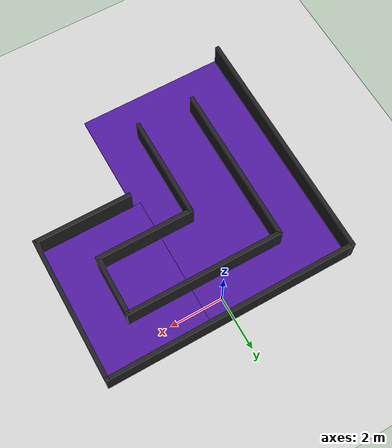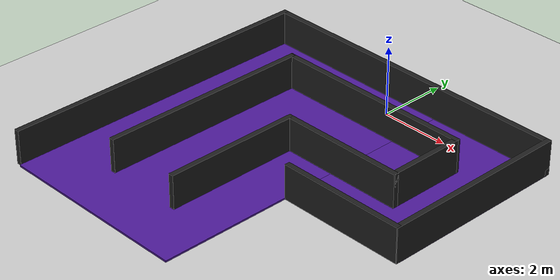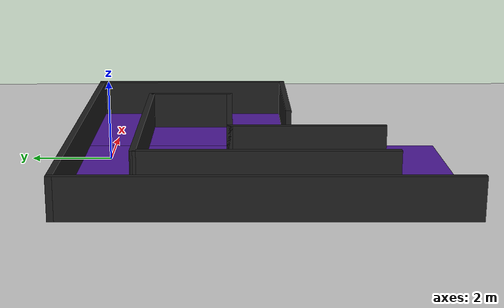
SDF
<sdf version="1.4">
 <world name="default">
  <light type="directional" name="sun">
   <cast_shadows>false</cast_shadows>
   <pose>-6 2 5 -0.5 -0.5 0</pose>
   <diffuse>0.8 0.8 0.8 1</diffuse>
   <specular>0.9 0.9 0.9 1</specular>
   <attenuation>
    <range>1000</range>
    <constant>0.9</constant>
    <linear>0.01</linear>
    <quadratic>0.001</quadratic>
   </attenuation>
   <direction>0 0 -1</direction>
  </light>
  <light type="directional" name="sun2">
   <cast_shadows>false</cast_shadows>
   <pose>-3 -7 5 0.5 0.5 0</pose>
   <diffuse>0.8 0.8 0.8 1</diffuse>
   <specular>0.9 0.9 0.9 1</specular>
   <attenuation>
    <range>1000</range>
    <constant>0.9</constant>
    <linear>0.01</linear>
    <quadratic>0.001</quadratic>
   </attenuation>
   <direction>0 0 -1</direction>
  </light>
  <model name="ground_plane">
   <static>1</static>
   <link name="link">
    <collision name="collision">
     <geometry><plane><normal>0 0 1</normal><size>100 100</size></plane></geometry>
     <surface><friction><ode><mu>100</mu><mu2>50</mu2></ode></friction></surface>
    </collision>
    <visual name="visual">
     <cast_shadows>0</cast_shadows>
     <geometry><plane><normal>0 0 1</normal><size>100 100</size></plane></geometry>
     <material>
      <script><uri>file://media/materials/scripts/gazebo.material</uri><name>Gazebo/Grey</name></script>
     </material>
    </visual>
    <velocity_decay><linear>0</linear><angular>0</angular></velocity_decay>
   </link>
  </model>
  <scene><ambient>0.4 0.4 0.4 1</ambient><background>0.7 0.7 0.7 1</background><shadows>0</shadows></scene>
  <physics type="ode">
   <max_step_size>0.01</max_step_size>
   <real_time_factor>1</real_time_factor>
   <real_time_update_rate>0</real_time_update_rate>
   <gravity>0 0 -9.8</gravity>
  </physics>
  <include><uri>model://Circuit_ql_2c</uri><pose>0 -3.85 0 0 0 1.567</pose></include>
 </world>
</sdf>

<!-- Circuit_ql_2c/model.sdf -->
<sdf version='1.6'>
  <model name='Circuit_ql_2c'>
    <link name='link_0'>
      <pose frame=''>-0.02607 1.78312 0 0 -0 0</pose>
      <inertial>
        <mass>2.28469</mass>
        <inertia>
          <ixx>6.04283</ixx>
          <ixy>0</ixy>
          <ixz>0</ixz>
          <iyy>16.0094</iyy>
          <iyz>0</iyz>
          <izz>22.0522</izz>
        </inertia>
        <pose frame=''>0 0 0.01 0 -0 0</pose>
      </inertial>
      <self_collide>0</self_collide>
      <kinematic>0</kinematic>
      <gravity>1</gravity>
      <visual name='visual'>
        <pose frame=''>0 0 0.01 0 -0 0</pose>
        <geometry>
          <box>
            <size>9.16985 5.63372 0.05</size>
          </box>
        </geometry>
        <material>
          <lighting>1</lighting>
          <script>
            <uri>file://media/materials/scripts/gazebo.material</uri>
            <name>Gazebo/Indigo</name>
          </script>
          <emissive>0 0 0 1</emissive>
          <shader type='vertex'>
            <normal_map>__default__</normal_map>
          </shader>
        </material>
        <cast_shadows>0</cast_shadows>
        <transparency>0</transparency>
      </visual>
      <collision name='collision'>
        <laser_retro>0</laser_retro>
        <max_contacts>10</max_contacts>
        <pose frame=''>0 0 0.01 0 -0 0</pose>
        <geometry>
          <box>
            <size>9.16985 5.63372 0.05</size>
          </box>
        </geometry>
        <surface>
          <friction>
            <ode>
              <mu>1</mu>
              <mu2>1</mu2>
              <fdir1>0 0 0</fdir1>
              <slip1>0</slip1>
              <slip2>0</slip2>
            </ode>
            <torsional>
              <coefficient>1</coefficient>
              <patch_radius>0</patch_radius>
              <surface_radius>0</surface_radius>
              <use_patch_radius>1</use_patch_radius>
              <ode>
                <slip>0</slip>
              </ode>
            </torsional>
          </friction>
          <bounce>
            <restitution_coefficient>0</restitution_coefficient>
            <threshold>1e+06</threshold>
          </bounce>
          <contact>
            <collide_without_contact>0</collide_without_contact>
            <collide_without_contact_bitmask>1</collide_without_contact_bitmask>
            <collide_bitmask>1</collide_bitmask>
            <ode>
              <soft_cfm>0</soft_cfm>
              <soft_erp>0.2</soft_erp>
              <kp>1e+13</kp>
              <kd>1</kd>
              <max_vel>0.01</max_vel>
              <min_depth>0</min_depth>
            </ode>
            <bullet>
              <split_impulse>1</split_impulse>
              <split_impulse_penetration_threshold>-0.01</split_impulse_penetration_threshold>
              <soft_cfm>0</soft_cfm>
              <soft_erp>0.2</soft_erp>
              <kp>1e+13</kp>
              <kd>1</kd>
            </bullet>
          </contact>
        </surface>
      </collision>
    </link>
    <link name='Wall_12'>
      <pose frame=''>-1.111 0.509 0 0 -0 0</pose>
      <self_collide>0</self_collide>
      <kinematic>0</kinematic>
      <visual name='Wall_12_Visual'>
        <pose frame=''>0 0 0.5 0 -0 0</pose>
        <geometry>
          <box>
            <size>4 0.15 1</size>
          </box>
        </geometry>
        <material>
          <script>
            <uri>file://media/materials/scripts/gazebo.material</uri>
            <name>Gazebo/Black</name>
          </script>
          <emissive>0 0 0 1</emissive>
        </material>
        <cast_shadows>0</cast_shadows>
        <transparency>0</transparency>
      </visual>
      <collision name='Wall_12_Collision'>
        <laser_retro>0</laser_retro>
        <max_contacts>10</max_contacts>
        <pose frame=''>0 0 0.5 0 -0 0</pose>
        <geometry>
          <box>
            <size>4 0.15 1</size>
          </box>
        </geometry>
        <surface>
          <friction>
            <ode>
              <mu>1</mu>
              <mu2>1</mu2>
              <fdir1>0 0 0</fdir1>
              <slip1>0</slip1>
              <slip2>0</slip2>
            </ode>
            <torsional>
              <coefficient>1</coefficient>
              <patch_radius>0</patch_radius>
              <surface_radius>0</surface_radius>
              <use_patch_radius>1</use_patch_radius>
              <ode>
                <slip>0</slip>
              </ode>
            </torsional>
          </friction>
          <bounce>
            <restitution_coefficient>0</restitution_coefficient>
            <threshold>1e+06</threshold>
          </bounce>
          <contact>
            <collide_without_contact>0</collide_without_contact>
            <collide_without_contact_bitmask>1</collide_without_contact_bitmask>
            <collide_bitmask>1</collide_bitmask>
            <ode>
              <soft_cfm>0</soft_cfm>
              <soft_erp>0.2</soft_erp>
              <kp>1e+13</kp>
              <kd>1</kd>
              <max_vel>0.01</max_vel>
              <min_depth>0</min_depth>
            </ode>
            <bullet>
              <split_impulse>1</split_impulse>
              <split_impulse_penetration_threshold>-0.01</split_impulse_penetration_threshold>
              <soft_cfm>0</soft_cfm>
              <soft_erp>0.2</soft_erp>
              <kp>1e+13</kp>
              <kd>1</kd>
            </bullet>
          </contact>
        </surface>
      </collision>
    </link>
    <link name='Wall_13'>
      <pose frame=''>0.814 -1.291 0 0 0 -1.5708</pose>
      <self_collide>0</self_collide>
      <kinematic>0</kinematic>
      <visual name='Wall_13_Visual'>
        <pose frame=''>0 0 0.5 0 -0 0</pose>
        <geometry>
          <box>
            <size>3.75 0.15 1</size>
          </box>
        </geometry>
        <material>
          <script>
            <uri>file://media/materials/scripts/gazebo.material</uri>
            <name>Gazebo/Black</name>
          </script>
          <emissive>0 0 0 1</emissive>
        </material>
        <cast_shadows>0</cast_shadows>
        <transparency>0</transparency>
      </visual>
      <collision name='Wall_13_Collision'>
        <laser_retro>0</laser_retro>
        <max_contacts>10</max_contacts>
        <pose frame=''>0 0 0.5 0 -0 0</pose>
        <geometry>
          <box>
            <size>3.75 0.15 1</size>
          </box>
        </geometry>
        <surface>
          <friction>
            <ode>
              <mu>1</mu>
              <mu2>1</mu2>
              <fdir1>0 0 0</fdir1>
              <slip1>0</slip1>
              <slip2>0</slip2>
            </ode>
            <torsional>
              <coefficient>1</coefficient>
              <patch_radius>0</patch_radius>
              <surface_radius>0</surface_radius>
              <use_patch_radius>1</use_patch_radius>
              <ode>
                <slip>0</slip>
              </ode>
            </torsional>
          </friction>
          <bounce>
            <restitution_coefficient>0</restitution_coefficient>
            <threshold>1e+06</threshold>
          </bounce>
          <contact>
            <collide_without_contact>0</collide_without_contact>
            <collide_without_contact_bitmask>1</collide_without_contact_bitmask>
            <collide_bitmask>1</collide_bitmask>
            <ode>
              <soft_cfm>0</soft_cfm>
              <soft_erp>0.2</soft_erp>
              <kp>1e+13</kp>
              <kd>1</kd>
              <max_vel>0.01</max_vel>
              <min_depth>0</min_depth>
            </ode>
            <bullet>
              <split_impulse>1</split_impulse>
              <split_impulse_penetration_threshold>-0.01</split_impulse_penetration_threshold>
              <soft_cfm>0</soft_cfm>
              <soft_erp>0.2</soft_erp>
              <kp>1e+13</kp>
              <kd>1</kd>
            </bullet>
          </contact>
        </surface>
      </collision>
    </link>
    <link name='Wall_14'>
      <pose frame=''>1.9 -3.091 0 0 -0 0</pose>
      <self_collide>0</self_collide>
      <kinematic>0</kinematic>
      <visual name='Wall_14_Visual'>
        <pose frame=''>0 0 0.5 0 -0 0</pose>
        <geometry>
          <box>
            <size>2.25 0.15 1</size>
          </box>
        </geometry>
        <material>
          <script>
            <uri>file://media/materials/scripts/gazebo.material</uri>
            <name>Gazebo/Black</name>
          </script>
          <emissive>0 0 0 1</emissive>
        </material>
        <cast_shadows>0</cast_shadows>
        <transparency>0</transparency>
      </visual>
      <collision name='Wall_14_Collision'>
        <laser_retro>0</laser_retro>
        <max_contacts>10</max_contacts>
        <pose frame=''>0 0 0.5 0 -0 0</pose>
        <geometry>
          <box>
            <size>2.25 0.15 1</size>
          </box>
        </geometry>
        <surface>
          <friction>
            <ode>
              <mu>1</mu>
              <mu2>1</mu2>
              <fdir1>0 0 0</fdir1>
              <slip1>0</slip1>
              <slip2>0</slip2>
            </ode>
            <torsional>
              <coefficient>1</coefficient>
              <patch_radius>0</patch_radius>
              <surface_radius>0</surface_radius>
              <use_patch_radius>1</use_patch_radius>
              <ode>
                <slip>0</slip>
              </ode>
            </torsional>
          </friction>
          <bounce>
            <restitution_coefficient>0</restitution_coefficient>
            <threshold>1e+06</threshold>
          </bounce>
          <contact>
            <collide_without_contact>0</collide_without_contact>
            <collide_without_contact_bitmask>1</collide_without_contact_bitmask>
            <collide_bitmask>1</collide_bitmask>
            <ode>
              <soft_cfm>0</soft_cfm>
              <soft_erp>0.2</soft_erp>
              <kp>1e+13</kp>
              <kd>1</kd>
              <max_vel>0.01</max_vel>
              <min_depth>0</min_depth>
            </ode>
            <bullet>
              <split_impulse>1</split_impulse>
              <split_impulse_penetration_threshold>-0.01</split_impulse_penetration_threshold>
              <soft_cfm>0</soft_cfm>
              <soft_erp>0.2</soft_erp>
              <kp>1e+13</kp>
              <kd>1</kd>
            </bullet>
          </contact>
        </surface>
      </collision>
    </link>
    <link name='Wall_15'>
      <pose frame=''>3.0215 -0.1735 0 0 -0 1.56823</pose>
      <self_collide>0</self_collide>
      <kinematic>0</kinematic>
      <visual name='Wall_15_Visual'>
        <pose frame=''>0 0 0.5 0 -0 0</pose>
        <geometry>
          <box>
            <size>5.98502 0.15 1</size>
          </box>
        </geometry>
        <material>
          <script>
            <uri>file://media/materials/scripts/gazebo.material</uri>
            <name>Gazebo/Black</name>
          </script>
          <emissive>0 0 0 1</emissive>
        </material>
        <cast_shadows>0</cast_shadows>
        <transparency>0</transparency>
      </visual>
      <collision name='Wall_15_Collision'>
        <laser_retro>0</laser_retro>
        <max_contacts>10</max_contacts>
        <pose frame=''>0 0 0.5 0 -0 0</pose>
        <geometry>
          <box>
            <size>5.98502 0.15 1</size>
          </box>
        </geometry>
        <surface>
          <friction>
            <ode>
              <mu>1</mu>
              <mu2>1</mu2>
              <fdir1>0 0 0</fdir1>
              <slip1>0</slip1>
              <slip2>0</slip2>
            </ode>
            <torsional>
              <coefficient>1</coefficient>
              <patch_radius>0</patch_radius>
              <surface_radius>0</surface_radius>
              <use_patch_radius>1</use_patch_radius>
              <ode>
                <slip>0</slip>
              </ode>
            </torsional>
          </friction>
          <bounce>
            <restitution_coefficient>0</restitution_coefficient>
            <threshold>1e+06</threshold>
          </bounce>
          <contact>
            <collide_without_contact>0</collide_without_contact>
            <collide_without_contact_bitmask>1</collide_without_contact_bitmask>
            <collide_bitmask>1</collide_bitmask>
            <ode>
              <soft_cfm>0</soft_cfm>
              <soft_erp>0.2</soft_erp>
              <kp>1e+13</kp>
              <kd>1</kd>
              <max_vel>0.01</max_vel>
              <min_depth>0</min_depth>
            </ode>
            <bullet>
              <split_impulse>1</split_impulse>
              <split_impulse_penetration_threshold>-0.01</split_impulse_penetration_threshold>
              <soft_cfm>0</soft_cfm>
              <soft_erp>0.2</soft_erp>
              <kp>1e+13</kp>
              <kd>1</kd>
            </bullet>
          </contact>
        </surface>
      </collision>
    </link>
    <link name='Wall_16'>
      <pose frame=''>-0.02 2.744 0 0 -0 3.14159</pose>
      <self_collide>0</self_collide>
      <kinematic>0</kinematic>
      <visual name='Wall_16_Visual'>
        <pose frame=''>0 0 0.5 0 -0 0</pose>
        <geometry>
          <box>
            <size>6.2 0.15 1</size>
          </box>
        </geometry>
        <material>
          <script>
            <uri>file://media/materials/scripts/gazebo.material</uri>
            <name>Gazebo/Black</name>
          </script>
          <emissive>0 0 0 1</emissive>
        </material>
        <cast_shadows>0</cast_shadows>
        <transparency>0</transparency>
      </visual>
      <collision name='Wall_16_Collision'>
        <laser_retro>0</laser_retro>
        <max_contacts>10</max_contacts>
        <pose frame=''>0 0 0.5 0 -0 0</pose>
        <geometry>
          <box>
            <size>6.2 0.15 1</size>
          </box>
        </geometry>
        <surface>
          <friction>
            <ode>
              <mu>1</mu>
              <mu2>1</mu2>
              <fdir1>0 0 0</fdir1>
              <slip1>0</slip1>
              <slip2>0</slip2>
            </ode>
            <torsional>
              <coefficient>1</coefficient>
              <patch_radius>0</patch_radius>
              <surface_radius>0</surface_radius>
              <use_patch_radius>1</use_patch_radius>
              <ode>
                <slip>0</slip>
              </ode>
            </torsional>
          </friction>
          <bounce>
            <restitution_coefficient>0</restitution_coefficient>
            <threshold>1e+06</threshold>
          </bounce>
          <contact>
            <collide_without_contact>0</collide_without_contact>
            <collide_without_contact_bitmask>1</collide_without_contact_bitmask>
            <collide_bitmask>1</collide_bitmask>
            <ode>
              <soft_cfm>0</soft_cfm>
              <soft_erp>0.2</soft_erp>
              <kp>1e+13</kp>
              <kd>1</kd>
              <max_vel>0.01</max_vel>
              <min_depth>0</min_depth>
            </ode>
            <bullet>
              <split_impulse>1</split_impulse>
              <split_impulse_penetration_threshold>-0.01</split_impulse_penetration_threshold>
              <soft_cfm>0</soft_cfm>
              <soft_erp>0.2</soft_erp>
              <kp>1e+13</kp>
              <kd>1</kd>
            </bullet>
          </contact>
        </surface>
      </collision>
    </link>
    <link name='Wall_2'>
      <pose frame=''>-0.75 -2.875 0 0 0 -1.5708</pose>
      <self_collide>0</self_collide>
      <kinematic>0</kinematic>
      <visual name='Wall_2_Visual'>
        <pose frame=''>0 0 0.5 0 -0 0</pose>
        <geometry>
          <box>
            <size>3.7 0.15 1</size>
          </box>
        </geometry>
        <material>
          <script>
            <uri>file://media/materials/scripts/gazebo.material</uri>
            <name>Gazebo/Black</name>
          </script>
          <emissive>0 0 0 1</emissive>
        </material>
        <cast_shadows>0</cast_shadows>
        <transparency>0</transparency>
      </visual>
      <collision name='Wall_2_Collision'>
        <laser_retro>0</laser_retro>
        <max_contacts>10</max_contacts>
        <pose frame=''>0 0 0.5 0 -0 0</pose>
        <geometry>
          <box>
            <size>3.7 0.15 1</size>
          </box>
        </geometry>
        <surface>
          <friction>
            <ode>
              <mu>1</mu>
              <mu2>1</mu2>
              <fdir1>0 0 0</fdir1>
              <slip1>0</slip1>
              <slip2>0</slip2>
            </ode>
            <torsional>
              <coefficient>1</coefficient>
              <patch_radius>0</patch_radius>
              <surface_radius>0</surface_radius>
              <use_patch_radius>1</use_patch_radius>
              <ode>
                <slip>0</slip>
              </ode>
            </torsional>
          </friction>
          <bounce>
            <restitution_coefficient>0</restitution_coefficient>
            <threshold>1e+06</threshold>
          </bounce>
          <contact>
            <collide_without_contact>0</collide_without_contact>
            <collide_without_contact_bitmask>1</collide_without_contact_bitmask>
            <collide_bitmask>1</collide_bitmask>
            <ode>
              <soft_cfm>0</soft_cfm>
              <soft_erp>0.2</soft_erp>
              <kp>1e+13</kp>
              <kd>1</kd>
              <max_vel>0.01</max_vel>
              <min_depth>0</min_depth>
            </ode>
            <bullet>
              <split_impulse>1</split_impulse>
              <split_impulse_penetration_threshold>-0.01</split_impulse_penetration_threshold>
              <soft_cfm>0</soft_cfm>
              <soft_erp>0.2</soft_erp>
              <kp>1e+13</kp>
              <kd>1</kd>
            </bullet>
          </contact>
        </surface>
      </collision>
    </link>
    <link name='Wall_3'>
      <pose frame=''>1.925 -4.675 0 0 -0 0</pose>
      <self_collide>0</self_collide>
      <kinematic>0</kinematic>
      <visual name='Wall_3_Visual'>
        <pose frame=''>0 0 0.5 0 -0 0</pose>
        <geometry>
          <box>
            <size>5.5 0.15 1</size>
          </box>
        </geometry>
        <material>
          <script>
            <uri>file://media/materials/scripts/gazebo.material</uri>
            <name>Gazebo/Black</name>
          </script>
          <emissive>0 0 0 1</emissive>
        </material>
        <cast_shadows>0</cast_shadows>
        <transparency>0</transparency>
      </visual>
      <collision name='Wall_3_Collision'>
        <laser_retro>0</laser_retro>
        <max_contacts>10</max_contacts>
        <pose frame=''>0 0 0.5 0 -0 0</pose>
        <geometry>
          <box>
            <size>5.5 0.15 1</size>
          </box>
        </geometry>
        <surface>
          <friction>
            <ode>
              <mu>1</mu>
              <mu2>1</mu2>
              <fdir1>0 0 0</fdir1>
              <slip1>0</slip1>
              <slip2>0</slip2>
            </ode>
            <torsional>
              <coefficient>1</coefficient>
              <patch_radius>0</patch_radius>
              <surface_radius>0</surface_radius>
              <use_patch_radius>1</use_patch_radius>
              <ode>
                <slip>0</slip>
              </ode>
            </torsional>
          </friction>
          <bounce>
            <restitution_coefficient>0</restitution_coefficient>
            <threshold>1e+06</threshold>
          </bounce>
          <contact>
            <collide_without_contact>0</collide_without_contact>
            <collide_without_contact_bitmask>1</collide_without_contact_bitmask>
            <collide_bitmask>1</collide_bitmask>
            <ode>
              <soft_cfm>0</soft_cfm>
              <soft_erp>0.2</soft_erp>
              <kp>1e+13</kp>
              <kd>1</kd>
              <max_vel>0.01</max_vel>
              <min_depth>0</min_depth>
            </ode>
            <bullet>
              <split_impulse>1</split_impulse>
              <split_impulse_penetration_threshold>-0.01</split_impulse_penetration_threshold>
              <soft_cfm>0</soft_cfm>
              <soft_erp>0.2</soft_erp>
              <kp>1e+13</kp>
              <kd>1</kd>
            </bullet>
          </contact>
        </surface>
      </collision>
    </link>
    <link name='Wall_7'>
      <pose frame=''>4.6 0 0 0 -0 1.5708</pose>
      <self_collide>0</self_collide>
      <kinematic>0</kinematic>
      <visual name='Wall_7_Visual'>
        <pose frame=''>0 0 0.5 0 -0 0</pose>
        <geometry>
          <box>
            <size>9.5 0.15 1</size>
          </box>
        </geometry>
        <material>
          <script>
            <uri>file://media/materials/scripts/gazebo.material</uri>
            <name>Gazebo/Black</name>
          </script>
          <emissive>0 0 0 1</emissive>
        </material>
        <cast_shadows>0</cast_shadows>
        <transparency>0</transparency>
      </visual>
      <collision name='Wall_7_Collision'>
        <laser_retro>0</laser_retro>
        <max_contacts>10</max_contacts>
        <pose frame=''>0 0 0.5 0 -0 0</pose>
        <geometry>
          <box>
            <size>9.5 0.15 1</size>
          </box>
        </geometry>
        <surface>
          <friction>
            <ode>
              <mu>1</mu>
              <mu2>1</mu2>
              <fdir1>0 0 0</fdir1>
              <slip1>0</slip1>
              <slip2>0</slip2>
            </ode>
            <torsional>
              <coefficient>1</coefficient>
              <patch_radius>0</patch_radius>
              <surface_radius>0</surface_radius>
              <use_patch_radius>1</use_patch_radius>
              <ode>
                <slip>0</slip>
              </ode>
            </torsional>
          </friction>
          <bounce>
            <restitution_coefficient>0</restitution_coefficient>
            <threshold>1e+06</threshold>
          </bounce>
          <contact>
            <collide_without_contact>0</collide_without_contact>
            <collide_without_contact_bitmask>1</collide_without_contact_bitmask>
            <collide_bitmask>1</collide_bitmask>
            <ode>
              <soft_cfm>0</soft_cfm>
              <soft_erp>0.2</soft_erp>
              <kp>1e+13</kp>
              <kd>1</kd>
              <max_vel>0.01</max_vel>
              <min_depth>0</min_depth>
            </ode>
            <bullet>
              <split_impulse>1</split_impulse>
              <split_impulse_penetration_threshold>-0.01</split_impulse_penetration_threshold>
              <soft_cfm>0</soft_cfm>
              <soft_erp>0.2</soft_erp>
              <kp>1e+13</kp>
              <kd>1</kd>
            </bullet>
          </contact>
        </surface>
      </collision>
    </link>
    <link name='Wall_9'>
      <pose frame=''>0.05 4.675 0 0 -0 3.14159</pose>
      <self_collide>0</self_collide>
      <kinematic>0</kinematic>
      <visual name='Wall_9_Visual'>
        <pose frame=''>0 0 0.5 0 -0 0</pose>
        <geometry>
          <box>
            <size>9.25 0.15 1</size>
          </box>
        </geometry>
        <material>
          <script>
            <uri>file://media/materials/scripts/gazebo.material</uri>
            <name>Gazebo/Black</name>
          </script>
          <emissive>0 0 0 1</emissive>
        </material>
        <cast_shadows>0</cast_shadows>
        <transparency>0</transparency>
      </visual>
      <collision name='Wall_9_Collision'>
        <laser_retro>0</laser_retro>
        <max_contacts>10</max_contacts>
        <pose frame=''>0 0 0.5 0 -0 0</pose>
        <geometry>
          <box>
            <size>9.25 0.15 1</size>
          </box>
        </geometry>
        <surface>
          <friction>
            <ode>
              <mu>1</mu>
              <mu2>1</mu2>
              <fdir1>0 0 0</fdir1>
              <slip1>0</slip1>
              <slip2>0</slip2>
            </ode>
            <torsional>
              <coefficient>1</coefficient>
              <patch_radius>0</patch_radius>
              <surface_radius>0</surface_radius>
              <use_patch_radius>1</use_patch_radius>
              <ode>
                <slip>0</slip>
              </ode>
            </torsional>
          </friction>
          <bounce>
            <restitution_coefficient>0</restitution_coefficient>
            <threshold>1e+06</threshold>
          </bounce>
          <contact>
            <collide_without_contact>0</collide_without_contact>
            <collide_without_contact_bitmask>1</collide_without_contact_bitmask>
            <collide_bitmask>1</collide_bitmask>
            <ode>
              <soft_cfm>0</soft_cfm>
              <soft_erp>0.2</soft_erp>
              <kp>1e+13</kp>
              <kd>1</kd>
              <max_vel>0.01</max_vel>
              <min_depth>0</min_depth>
            </ode>
            <bullet>
              <split_impulse>1</split_impulse>
              <split_impulse_penetration_threshold>-0.01</split_impulse_penetration_threshold>
              <soft_cfm>0</soft_cfm>
              <soft_erp>0.2</soft_erp>
              <kp>1e+13</kp>
              <kd>1</kd>
            </bullet>
          </contact>
        </surface>
      </collision>
    </link>
    <link name='link_0_clone'>
      <pose frame=''>1.94281 -2.73444 0 0 -0 0</pose>
      <inertial>
        <mass>0.684711</mass>
        <inertia>
          <ixx>0.860788</ixx>
          <ixy>0</ixy>
          <ixz>0</ixz>
          <iyy>1.53132</iyy>
          <iyz>0</iyz>
          <izz>2.51187</izz>
        </inertia>
        <pose frame=''>0 0 0.01 0 -0 0</pose>
      </inertial>
      <self_collide>0</self_collide>
      <kinematic>0</kinematic>
      <visual name='visual'>
        <pose frame=''>0 0 0.01 0 -0 0</pose>
        <geometry>
          <box>
            <size>5.28078 4.01687 0.05</size>
          </box>
        </geometry>
        <material>
          <lighting>1</lighting>
          <script>
            <uri>file://media/materials/scripts/gazebo.material</uri>
            <name>Gazebo/Indigo</name>
          </script>
          <emissive>0 0 0 1</emissive>
          <shader type='pixel'/>
        </material>
        <cast_shadows>0</cast_shadows>
        <transparency>0</transparency>
      </visual>
      <collision name='collision'>
        <laser_retro>0</laser_retro>
        <max_contacts>10</max_contacts>
        <pose frame=''>0 0 0.01 0 -0 0</pose>
        <geometry>
          <box>
            <size>5.28078 4.01687 0.05</size>
          </box>
        </geometry>
        <surface>
          <friction>
            <ode>
              <mu>1</mu>
              <mu2>1</mu2>
              <fdir1>0 0 0</fdir1>
              <slip1>0</slip1>
              <slip2>0</slip2>
            </ode>
            <torsional>
              <coefficient>1</coefficient>
              <patch_radius>0</patch_radius>
              <surface_radius>0</surface_radius>
              <use_patch_radius>1</use_patch_radius>
              <ode>
                <slip>0</slip>
              </ode>
            </torsional>
          </friction>
          <bounce>
            <restitution_coefficient>0</restitution_coefficient>
            <threshold>1e+06</threshold>
          </bounce>
          <contact>
            <collide_without_contact>0</collide_without_contact>
            <collide_without_contact_bitmask>1</collide_without_contact_bitmask>
            <collide_bitmask>1</collide_bitmask>
            <ode>
              <soft_cfm>0</soft_cfm>
              <soft_erp>0.2</soft_erp>
              <kp>1e+13</kp>
              <kd>1</kd>
              <max_vel>0.01</max_vel>
              <min_depth>0</min_depth>
            </ode>
            <bullet>
              <split_impulse>1</split_impulse>
              <split_impulse_penetration_threshold>-0.01</split_impulse_penetration_threshold>
              <soft_cfm>0</soft_cfm>
              <soft_erp>0.2</soft_erp>
              <kp>1e+13</kp>
              <kd>1</kd>
            </bullet>
          </contact>
        </surface>
      </collision>
    </link>
    <static>1</static>
    <allow_auto_disable>1</allow_auto_disable>
  </model>
</sdf>
